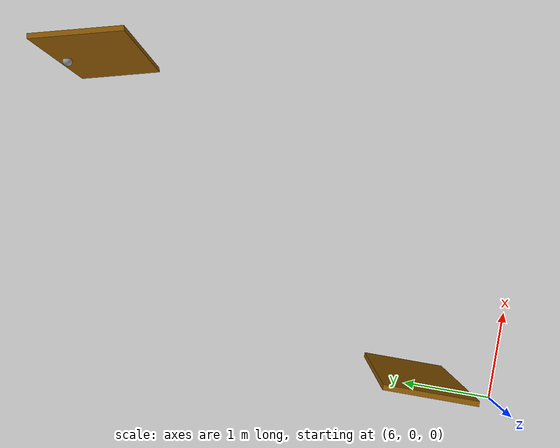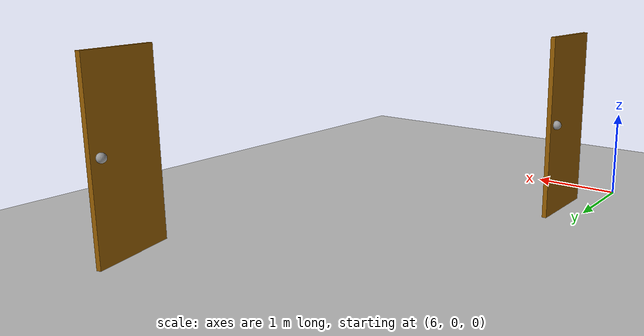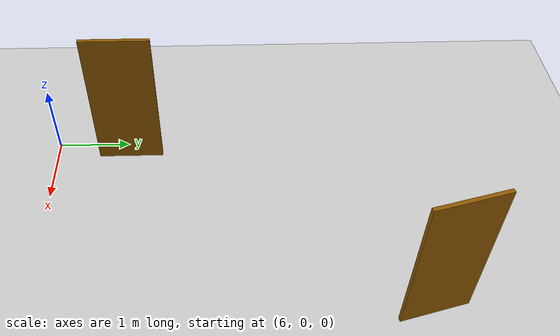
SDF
<sdf version="1.6">
 <world name="default">
  <model name="ground_plane">
   <static>1</static>
   <link name="link">
    <collision name="collision">
     <geometry><plane><normal>0 0 1</normal><size>100 100</size></plane></geometry>
     <surface>
      <contact><collide_bitmask>65535</collide_bitmask></contact>
      <friction><ode><mu>100</mu><mu2>50</mu2></ode></friction>
     </surface>
    </collision>
    <visual name="visual">
     <cast_shadows>0</cast_shadows>
     <geometry><plane><normal>0 0 1</normal><size>100 100</size></plane></geometry>
     <material>
      <script><uri>file://media/materials/scripts/gazebo.material</uri><name>Gazebo/Grey</name></script>
     </material>
    </visual>
   </link>
  </model>
  <model name="custom_door">
   <link name="link_0">
    <inertial>
     <mass>1</mass>
     <inertia>
      <ixx>0.166667</ixx>
      <ixy>0</ixy>
      <ixz>0</ixz>
      <iyy>0.166667</iyy>
      <iyz>0</iyz>
      <izz>0.166667</izz>
     </inertia>
    </inertial>
    <pose>0.023443 -0.170637 -0.020383 0 -0 0</pose>
    <visual name="visual">
     <geometry><box><size>0.05 0.9 2</size></box></geometry>
     <material>
      <lighting>1</lighting>
      <script><uri>file://media/materials/scripts/gazebo.material</uri><name>Gazebo/Grey</name></script>
      <shader type="vertex"><normal_map>__default__</normal_map></shader>
      <ambient>0.561 0.349 0.008 1</ambient>
      <diffuse>0.561 0.349 0.008 1</diffuse>
      <specular>0.561 0.349 0.008 1</specular>
      <emissive>0 0 0 1</emissive>
     </material>
    </visual>
    <collision name="collision">
     <geometry><box><size>0.05 0.9 2</size></box></geometry>
     <surface>
      <friction>
       <ode><mu>1</mu><mu2>1</mu2><fdir1>0 0 0</fdir1><slip1>0</slip1><slip2>0</slip2></ode>
       <torsional>
        <coefficient>1</coefficient>
        <patch_radius>0</patch_radius>
        <surface_radius>0</surface_radius>
        <use_patch_radius>1</use_patch_radius>
        <ode><slip>0</slip></ode>
       </torsional>
      </friction>
      <bounce><restitution_coefficient>0</restitution_coefficient><threshold>1e+06</threshold></bounce>
      <contact>
       <collide_without_contact>0</collide_without_contact>
       <collide_without_contact_bitmask>1</collide_without_contact_bitmask>
       <collide_bitmask>1</collide_bitmask>
       <ode>
        <soft_cfm>0</soft_cfm>
        <soft_erp>0.2</soft_erp>
        <kp>1e+13</kp>
        <kd>1</kd>
        <max_vel>0.01</max_vel>
        <min_depth>0</min_depth>
       </ode>
       <bullet>
        <split_impulse>1</split_impulse>
        <split_impulse_penetration_threshold>-0.01</split_impulse_penetration_threshold>
        <soft_cfm>0</soft_cfm>
        <soft_erp>0.2</soft_erp>
        <kp>1e+13</kp>
        <kd>1</kd>
       </bullet>
      </contact>
     </surface>
    </collision>
   </link>
   <link name="link_1">
    <inertial>
     <mass>1</mass>
     <inertia><ixx>0.1</ixx><ixy>0</ixy><ixz>0</ixz><iyy>0.1</iyy><iyz>0</iyz><izz>0.1</izz></inertia>
    </inertial>
    <pose>-0.023443 0.170636 0.020383 0 -0 0</pose>
    <gravity>0</gravity>
    <visual name="visual">
     <geometry><sphere><radius>0.05</radius></sphere></geometry>
     <material>
      <lighting>1</lighting>
      <script><uri>file://media/materials/scripts/gazebo.material</uri><name>Gazebo/Grey</name></script>
      <shader type="vertex"><normal_map>__default__</normal_map></shader>
      <ambient>0.729 0.741 0.714 1</ambient>
      <diffuse>0.729 0.741 0.714 1</diffuse>
      <specular>0.729 0.741 0.714 1</specular>
      <emissive>0 0 0 1</emissive>
     </material>
    </visual>
    <collision name="collision">
     <geometry><sphere><radius>0.05</radius></sphere></geometry>
     <surface>
      <friction>
       <ode><mu>1</mu><mu2>1</mu2><fdir1>0 0 0</fdir1><slip1>0</slip1><slip2>0</slip2></ode>
       <torsional>
        <coefficient>1</coefficient>
        <patch_radius>0</patch_radius>
        <surface_radius>0</surface_radius>
        <use_patch_radius>1</use_patch_radius>
        <ode><slip>0</slip></ode>
       </torsional>
      </friction>
      <bounce><restitution_coefficient>0</restitution_coefficient><threshold>1e+06</threshold></bounce>
      <contact>
       <collide_without_contact>0</collide_without_contact>
       <collide_without_contact_bitmask>1</collide_without_contact_bitmask>
       <collide_bitmask>1</collide_bitmask>
       <ode>
        <soft_cfm>0</soft_cfm>
        <soft_erp>0.2</soft_erp>
        <kp>1e+13</kp>
        <kd>1</kd>
        <max_vel>0.01</max_vel>
        <min_depth>0</min_depth>
       </ode>
       <bullet>
        <split_impulse>1</split_impulse>
        <split_impulse_penetration_threshold>-0.01</split_impulse_penetration_threshold>
        <soft_cfm>0</soft_cfm>
        <soft_erp>0.2</soft_erp>
        <kp>1e+13</kp>
        <kd>1</kd>
       </bullet>
      </contact>
     </surface>
    </collision>
   </link>
   <joint name="link_0_JOINT_0" type="fixed">
    <parent>link_0</parent>
    <child>link_1</child>
    <physics>
     <ode><limit><cfm>0</cfm><erp>0.2</erp></limit><suspension><cfm>0</cfm><erp>0.2</erp></suspension></ode>
    </physics>
   </joint>
   <static>1</static>
   <pose>6.22853 1.23909 1.06 0 -0 0</pose>
  </model>
  <model name="custom_door_6">
   <link name="link_0">
    <inertial>
     <mass>1</mass>
     <inertia>
      <ixx>0.166667</ixx>
      <ixy>0</ixy>
      <ixz>0</ixz>
      <iyy>0.166667</iyy>
      <iyz>0</iyz>
      <izz>0.166667</izz>
     </inertia>
    </inertial>
    <pose>0.023443 -0.170637 -0.020383 0 -0 0</pose>
    <visual name="visual">
     <geometry><box><size>0.05 0.9 2</size></box></geometry>
     <material>
      <lighting>1</lighting>
      <script><uri>file://media/materials/scripts/gazebo.material</uri><name>Gazebo/Grey</name></script>
      <shader type="vertex"><normal_map>__default__</normal_map></shader>
      <ambient>0.561 0.349 0.008 1</ambient>
      <diffuse>0.561 0.349 0.008 1</diffuse>
      <specular>0.561 0.349 0.008 1</specular>
      <emissive>0 0 0 1</emissive>
     </material>
    </visual>
    <collision name="collision">
     <geometry><box><size>0.05 0.9 2</size></box></geometry>
     <surface>
      <friction>
       <ode><mu>1</mu><mu2>1</mu2><fdir1>0 0 0</fdir1><slip1>0</slip1><slip2>0</slip2></ode>
       <torsional>
        <coefficient>1</coefficient>
        <patch_radius>0</patch_radius>
        <surface_radius>0</surface_radius>
        <use_patch_radius>1</use_patch_radius>
        <ode><slip>0</slip></ode>
       </torsional>
      </friction>
      <bounce><restitution_coefficient>0</restitution_coefficient><threshold>1e+06</threshold></bounce>
      <contact>
       <collide_without_contact>0</collide_without_contact>
       <collide_without_contact_bitmask>1</collide_without_contact_bitmask>
       <collide_bitmask>1</collide_bitmask>
       <ode>
        <soft_cfm>0</soft_cfm>
        <soft_erp>0.2</soft_erp>
        <kp>1e+13</kp>
        <kd>1</kd>
        <max_vel>0.01</max_vel>
        <min_depth>0</min_depth>
       </ode>
       <bullet>
        <split_impulse>1</split_impulse>
        <split_impulse_penetration_threshold>-0.01</split_impulse_penetration_threshold>
        <soft_cfm>0</soft_cfm>
        <soft_erp>0.2</soft_erp>
        <kp>1e+13</kp>
        <kd>1</kd>
       </bullet>
      </contact>
     </surface>
    </collision>
   </link>
   <link name="link_1">
    <inertial>
     <mass>1</mass>
     <inertia><ixx>0.1</ixx><ixy>0</ixy><ixz>0</ixz><iyy>0.1</iyy><iyz>0</iyz><izz>0.1</izz></inertia>
    </inertial>
    <pose>-0.023443 0.170636 0.020383 0 -0 0</pose>
    <gravity>0</gravity>
    <visual name="visual">
     <geometry><sphere><radius>0.05</radius></sphere></geometry>
     <material>
      <lighting>1</lighting>
      <script><uri>file://media/materials/scripts/gazebo.material</uri><name>Gazebo/Grey</name></script>
      <shader type="vertex"><normal_map>__default__</normal_map></shader>
      <ambient>0.729 0.741 0.714 1</ambient>
      <diffuse>0.729 0.741 0.714 1</diffuse>
      <specular>0.729 0.741 0.714 1</specular>
      <emissive>0 0 0 1</emissive>
     </material>
    </visual>
    <collision name="collision">
     <geometry><sphere><radius>0.05</radius></sphere></geometry>
     <surface>
      <friction>
       <ode><mu>1</mu><mu2>1</mu2><fdir1>0 0 0</fdir1><slip1>0</slip1><slip2>0</slip2></ode>
       <torsional>
        <coefficient>1</coefficient>
        <patch_radius>0</patch_radius>
        <surface_radius>0</surface_radius>
        <use_patch_radius>1</use_patch_radius>
        <ode><slip>0</slip></ode>
       </torsional>
      </friction>
      <bounce><restitution_coefficient>0</restitution_coefficient><threshold>1e+06</threshold></bounce>
      <contact>
       <collide_without_contact>0</collide_without_contact>
       <collide_without_contact_bitmask>1</collide_without_contact_bitmask>
       <collide_bitmask>1</collide_bitmask>
       <ode>
        <soft_cfm>0</soft_cfm>
        <soft_erp>0.2</soft_erp>
        <kp>1e+13</kp>
        <kd>1</kd>
        <max_vel>0.01</max_vel>
        <min_depth>0</min_depth>
       </ode>
       <bullet>
        <split_impulse>1</split_impulse>
        <split_impulse_penetration_threshold>-0.01</split_impulse_penetration_threshold>
        <soft_cfm>0</soft_cfm>
        <soft_erp>0.2</soft_erp>
        <kp>1e+13</kp>
        <kd>1</kd>
       </bullet>
      </contact>
     </surface>
    </collision>
   </link>
   <joint name="link_0_JOINT_0" type="fixed">
    <parent>link_0</parent>
    <child>link_1</child>
    <physics>
     <ode><limit><cfm>0</cfm><erp>0.2</erp></limit><suspension><cfm>0</cfm><erp>0.2</erp></suspension></ode>
    </physics>
   </joint>
   <static>1</static>
   <pose>8.91516 5.03677 1.06 0 -0 0.259764</pose>
  </model>
 </world>
</sdf>
